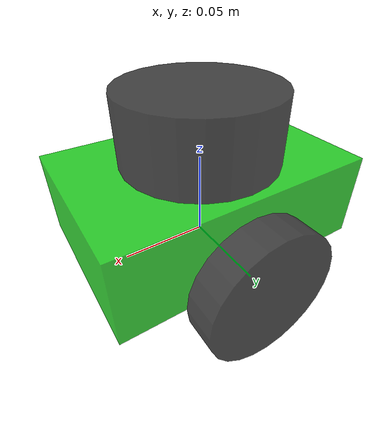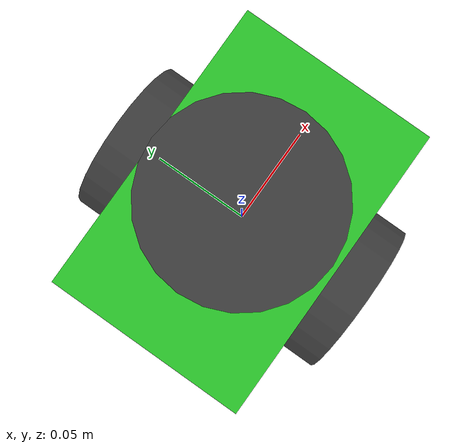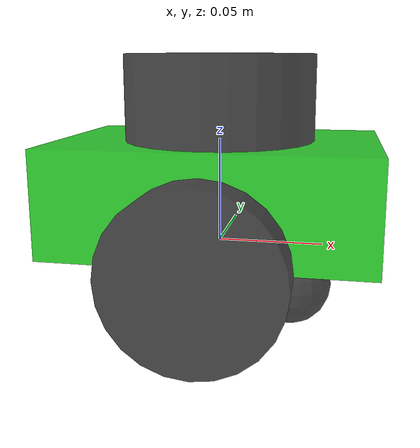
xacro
<?xml version="1.0"?>

<robot name="robot" xmlns:xacro="http://www.ros.org/wiki/xacro">

    <!-- Constants -->
    <xacro:property name="PI" value="3.1415926535897931"/>

    <!-- Dummy inertia -->
    <xacro:property name="dummy_inertia"                value="1e-09"/>

    <!-- Classic parameters -->
    <xacro:property name="body_mass"    value="2"/>
    <xacro:property name="body_lenght"  value="0.15"/>
    <xacro:property name="body_width"   value="0.1"/>
    <xacro:property name="body_height"  value="0.05"/>

    <!-- Control wheels parameters -->
    <xacro:property name="control_wheel_mass"   value="0.5"/>
    <xacro:property name="control_wheel_radius" value="0.04"/>
    <xacro:property name="control_wheel_lenght" value="0.02"/>

    <!-- Front wheel parameters -->
    <xacro:property name="front_wheel_mass"     value="0.001"/>
    <xacro:property name="front_wheel_radius"   value="0.02"/>

    <!-- Rear wheel parameters -->
    <xacro:property name="rear_wheel_mass"      value="0.001"/>
    <xacro:property name="rear_wheel_radius"    value="0.02"/>

    <!-- Frame position and orientation -->
    <xacro:property name="right_wheel_frame_position"       value="0 ${-body_width/2 - control_wheel_lenght/2} 0"/>
    <xacro:property name="right_wheel_frame_orientation"    value="${-PI/2} 0 0"/>
    <xacro:property name="left_wheel_frame_position"        value="0 ${body_width/2 + control_wheel_lenght/2} 0"/>
    <xacro:property name="left_wheel_frame_orientation"     value="${-PI/2} 0 0"/>
    <xacro:property name="front_wheel_frame_position"       value="${body_lenght/2 - 2 * front_wheel_radius} 0 ${-front_wheel_radius}"/>
    <xacro:property name="front_wheel_frame_orientation"    value="0 0 0"/>
    <xacro:property name="rear_wheel_frame_position"        value="${-body_lenght/2 + 2 * rear_wheel_radius} 0 ${-rear_wheel_radius}"/>
    <xacro:property name="rear_wheel_frame_orientation"     value="0 0 0"/>
    <xacro:property name="laser_frame_position"             value="0 0 ${body_height + 0.02}"/>
    <xacro:property name="laser_frame_orientation"          value="0 0 0"/>
    <xacro:property name="imu_frame_position"               value="0 0 ${body_height/2}"/>
    <xacro:property name="imu_frame_orientation"            value="0 0 0"/>

    <!-- Import Rviz colors -->
    <xacro:include filename="$(find my_robot)/robot_description/materials.xacro"/>

    <!-- Import Gazebo customization elemets -->
    <xacro:include filename="$(find my_robot)/robot_description/robot_description.gazebo"/>

    <!-- Import laser sensor -->
    <xacro:include filename="$(find my_robot)/sensors/hokuyo.urdf.xacro"/>

    <!-- Import IMU sensor -->
    <xacro:include filename="$(find my_robot)/sensors/imu.urdf.xacro"/>

    <!-- Extra link (non-inertial) -->

    <!-- Chassis Link -->
    <link name="base_link">
        <collision>
            <origin xyz="0 0 ${body_height/2}" rpy="0 0 0"/>
            <geometry>
                <box size="${body_lenght} ${body_width} ${body_height}"/>
            </geometry>
        </collision>

        <visual>
            <origin xyz="0 0 ${body_height/2}" rpy="0 0 0"/>
            <geometry>
                <box size="${body_lenght} ${body_width} ${body_height}"/>
            </geometry>
            <material name="green"/>
        </visual>

        <inertial>
            <origin xyz="0 0 ${body_height/2}" rpy="0 0 0"/>
            <mass value="${body_mass}"/>
            <inertia
                ixx="${body_mass / 12 * (body_width*body_width + body_height*body_height)}" ixy="0.0" ixz="0.0"
                iyy="${body_mass / 12 * (body_height*body_height + body_lenght*body_lenght)}" iyz="0.0"
                izz="${body_mass / 12 * (body_lenght*body_lenght + body_width*body_width)}"/>
        </inertial>
    </link>

     <!-- IMU link -->
    <xacro:imu xyz="${imu_frame_position}"
        rpy="${imu_frame_orientation}"
        parent="base_link">
    </xacro:imu>

    <!-- Laser link -->
    <xacro:hokuyo_laser xyz="${laser_frame_position}"
        rpy="${laser_frame_orientation}"
        parent="base_link">
    </xacro:hokuyo_laser>

    <!-- Right wheel joint -->
    <joint name="right_wheel_joint" type="continuous">
        <parent link="base_link"/>
        <child link="right_wheel"/>
        <origin xyz="${right_wheel_frame_position}" rpy="${right_wheel_frame_orientation}"/>
        <axis xyz="0 0 1"/>
        <dynamics damping="0.7"/>
    </joint>

    <!-- Right wheel link -->
    <link name="right_wheel">
        <collision>
            <origin xyz="0 0 0" rpy="0 0 0"/>
            <geometry>
                <cylinder length="${control_wheel_lenght}" radius="${control_wheel_radius}"/>
            </geometry>
        </collision>

        <visual>
            <origin xyz="0 0 0" rpy="0 0 0"/>
            <geometry>
                <cylinder length="${control_wheel_lenght}" radius="${control_wheel_radius}"/>
            </geometry>
            <material name="black"/>
        </visual>

        <inertial>
            <origin xyz="0 0 0" rpy="0 0 0"/>
            <mass value="${control_wheel_mass}"/>
            <inertia
                ixx="${control_wheel_mass / 12 * (3 * control_wheel_radius*control_wheel_radius + control_wheel_lenght*control_wheel_lenght)}" ixy="0.0" ixz="0.0"
                iyy="${control_wheel_mass / 12 * (3 * control_wheel_radius*control_wheel_radius + control_wheel_lenght*control_wheel_lenght)}" iyz="0.0"
                izz="${control_wheel_mass /  2 * (control_wheel_radius*control_wheel_radius)}"/>
        </inertial>
    </link>

    <!-- Left wheel joint -->
    <joint name="left_wheel_joint" type="continuous">
        <parent link="base_link"/>
        <child link="left_wheel"/>
        <origin xyz="${left_wheel_frame_position}" rpy="${left_wheel_frame_orientation}"/>
        <axis xyz="0 0 1"/>
        <dynamics damping="0.7"/>
    </joint>

    <!-- Left wheel link -->
    <link name="left_wheel">
        <collision>
            <origin xyz="0 0 0" rpy="0 0 0"/>
            <geometry>
                <cylinder length="${control_wheel_lenght}" radius="${control_wheel_radius}"/>
            </geometry>
        </collision>

        <visual>
            <origin xyz="0 0 0" rpy="0 0 0"/>
            <geometry>
                <cylinder length="${control_wheel_lenght}" radius="${control_wheel_radius}"/>
            </geometry>
            <material name="black"/>
        </visual>

        <inertial>
            <origin xyz="0 0 0" rpy="0 0 0"/>
            <mass value="${control_wheel_mass}"/>
            <inertia
                ixx="${control_wheel_mass / 12 * (3 * control_wheel_radius*control_wheel_radius + control_wheel_lenght*control_wheel_lenght)}" ixy="0.0" ixz="0.0"
                iyy="${control_wheel_mass / 12 * (3 * control_wheel_radius*control_wheel_radius + control_wheel_lenght*control_wheel_lenght)}" iyz="0.0"
                izz="${control_wheel_mass /  2 * (control_wheel_radius*control_wheel_radius)}"/>
        </inertial>
    </link>

    <!-- Rear wheel joint -->
    <joint name="rear_wheel_joint" type="fixed">
        <parent link="base_link"/>
        <child link="rear_wheel"/>
        <origin xyz="${rear_wheel_frame_position}" rpy="${rear_wheel_frame_orientation}"/>
    </joint>

    <!-- Rear wheel link -->
    <link name="rear_wheel">
        <collision>
            <origin xyz="0 0 0" rpy="0 0 0"/>
            <geometry>
                <sphere radius="${rear_wheel_radius}"/>
            </geometry>
        </collision>

        <visual>
            <origin xyz="0 0 0" rpy="0 0 0"/>
            <geometry>
                <sphere radius="${rear_wheel_radius}"/>
            </geometry>
            <material name="black"/>
        </visual>

        <inertial>
            <origin xyz="0 0 0" rpy="0 0 0"/>
            <mass value="${rear_wheel_mass}"/>
            <inertia
                ixx="${2 * rear_wheel_mass * rear_wheel_radius * rear_wheel_radius / 5}" ixy="0.0" ixz="0.0"
                iyy="${2 * rear_wheel_mass * rear_wheel_radius * rear_wheel_radius / 5}" iyz="0.0"
                izz="${2 * rear_wheel_mass * rear_wheel_radius * rear_wheel_radius / 5}"/>
        </inertial>
    </link>

    <!-- Front wheel joint -->
    <joint name="front_wheel_joint" type="fixed">
        <parent link="base_link"/>
        <child link="front_wheel"/>
        <origin xyz="${front_wheel_frame_position}" rpy="${front_wheel_frame_orientation}"/>
    </joint>

    <!-- Front wheel link -->
    <link name="front_wheel">
        <collision>
            <origin xyz="0 0 0" rpy="0 0 0"/>
            <geometry>
                <sphere radius="${front_wheel_radius}"/>
            </geometry>
        </collision>

        <visual>
            <origin xyz="0 0 0" rpy="0 0 0"/>
            <geometry>
                <sphere radius="${front_wheel_radius}"/>
            </geometry>
            <material name="black"/>
        </visual>

        <inertial>
            <origin xyz="0 0 0" rpy="0 0 0"/>
            <mass value="${front_wheel_mass}"/>
            <inertia
                ixx="${2 * front_wheel_mass * front_wheel_radius * front_wheel_radius / 5}" ixy="0.0" ixz="0.0"
                iyy="${2 * front_wheel_mass * front_wheel_radius * front_wheel_radius / 5}" iyz="0.0"
                izz="${2 * front_wheel_mass * front_wheel_radius * front_wheel_radius / 5}"/>
        </inertial>
    </link>

    <!-- Transmission at joints-->
    <transmission name="right_wheel_trans">
        <type>transmission_interface/SimpleTransmission</type>
        <joint name="right_wheel_joint">
            <hardwareInterface>hardware_interface/EffortJointInterface</hardwareInterface>
        </joint>
        <actuator name="right_wheel_motor">
            <hardwareInterface>hardware_interface/EffortJointInterface</hardwareInterface>
            <mechanicalReduction></mechanicalReduction>
        </actuator>
    </transmission>

    <transmission name="left_wheel_trans">
        <type>transmission_interface/SimpleTransmission</type>
        <joint name="left_wheel_joint">
            <hardwareInterface>hardware_interface/EffortJointInterface</hardwareInterface>
        </joint>
        <actuator name="left_wheel_motor">
            <hardwareInterface>hardware_interface/EffortJointInterface</hardwareInterface>
            <mechanicalReduction></mechanicalReduction>
        </actuator>
    </transmission>

</robot>

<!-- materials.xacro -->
<robot>

    <material name="black">
        <color rgba="0.1 0.1 0.1 0.8"/>
    </material>

    <material name="blue">
        <color rgba="0.0 0.0 0.8 0.8"/>
    </material>

    <material name="green">
        <color rgba="0.0 0.8 0.0 0.8"/>
    </material>

    <material name="grey">
        <color rgba="0.4 0.4 0.4 0.8"/>
    </material>

    <material name="orange">
        <color rgba="1 ${108/255} ${10/255} 0.8"/>
    </material>

    <material name="brown">
        <color rgba="${222/255} ${207/255} ${195/255} 0.8"/>
    </material>

    <material name="red">
        <color rgba="0.8 0.0 0.0 0.8"/>
    </material>

    <material name="white">
        <color rgba="1.0 1.0 1.0 0.8"/>
    </material>

</robot>

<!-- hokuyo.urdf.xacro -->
<robot xmlns:xacro="http://www.ros.org/wiki/xacro" name="hokuyo">

<xacro:macro name="hokuyo_laser" params="xyz rpy parent">

    <joint name="hokuyo_laser_joint" type="fixed">
        <axis xyz="0 0 1" />
        <origin xyz="${xyz}" rpy="${rpy}"/>
        <parent link="${parent}"/>
        <child link="hokuyo_laser_link"/>
    </joint>

    <link name="hokuyo_laser_link">
        <collision>
            <origin xyz="0 0 0" rpy="0 0 0"/>
            <geometry>
                <cylinder length="0.04" radius="0.045"/>
            </geometry>
        </collision>
        <visual>
            <origin xyz="0 0 0" rpy="0 0 0"/>
            <geometry>
                <cylinder length="0.04" radius="0.045"/>
            </geometry>
            <material name="black"/>
        </visual>
        <inertial>
            <mass value="1e-5" />
            <origin xyz="0 0 0" rpy="0 0 0"/>
            <inertia ixx="1e-6" ixy="0" ixz="0" iyy="1e-6" iyz="0" izz="1e-6" />
        </inertial>
    </link>

</xacro:macro>

</robot>

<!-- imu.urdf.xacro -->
<robot xmlns:xacro="http://www.ros.org/wiki/xacro">

<xacro:macro name="imu" params="xyz rpy parent">
    <joint name="imu_joint" type="fixed">
        <parent link="${parent}"/>
        <child link="imu_link"/>
        <origin xyz="${xyz}" rpy="${rpy}"/>
    </joint>

    <link name="imu_link">
        <inertial>
        <mass value="1e-5"/>
        <origin xyz="0 0 0" rpy="0 0 0"/>
        <inertia ixx="1e-9" ixy="0.0" ixz="0.0" iyy="1e-9" iyz="0.0" izz="1e-9"/>
        </inertial>
    </link>
</xacro:macro>
</robot>
